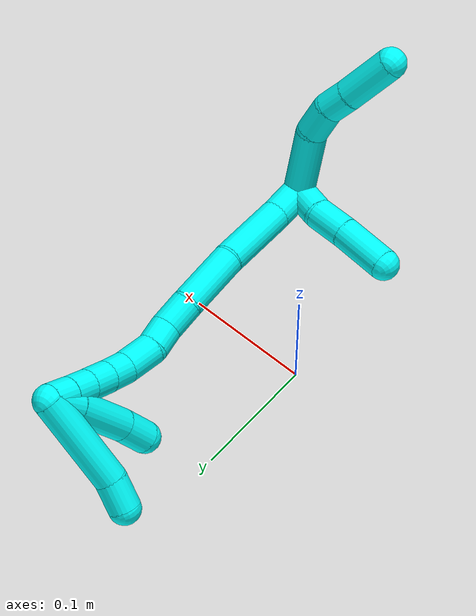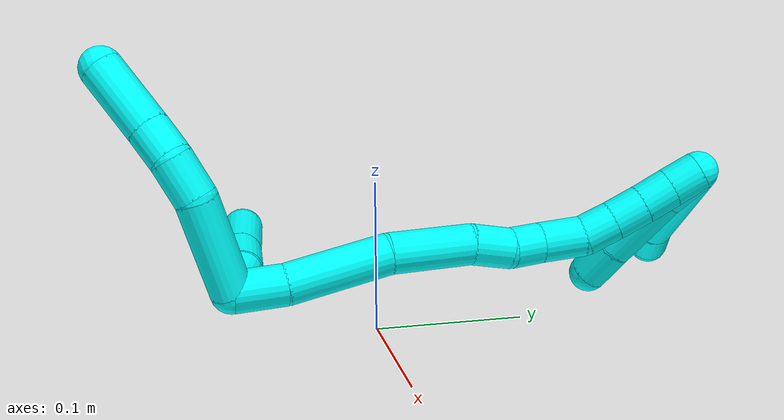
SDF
<sdf version="1.7">
 <world name="default">
  <model name="3">
   <static>0</static>
   <link name="3">
    <collision name="collision-cylinder-e_1_2_8">
     <pose>-0.023839 -0.017351 0.003004 1.39939 -0.934585 -0.803278</pose>
     <geometry><cylinder><radius>0.0125</radius><length>0.059275</length></cylinder></geometry>
     <surface>
      <friction><ode><mu>1.16</mu><mu2>1.16</mu2><slip1>0</slip1><slip2>0</slip2></ode></friction>
      <contact><ode><kp>1e+06</kp><kd>1</kd><max_vel>0</max_vel><min_depth>0.001</min_depth></ode></contact>
     </surface>
    </collision>
    <visual name="visual-cylinder-e_1_2_8">
     <pose>-0.023839 -0.017351 0.003004 1.39939 -0.934585 -0.803278</pose>
     <geometry><cylinder><radius>0.0125</radius><length>0.059275</length></cylinder></geometry>
     <material><ambient>0.003922 1 0.996078 1</ambient></material>
    </visual>
    <collision name="collision-cylinder-e_2_8_9">
     <pose>-0.055047 -0.044701 0.009262 1.25607 -0.611236 -0.450408</pose>
     <geometry><cylinder><radius>0.0125</radius><length>0.025681</length></cylinder></geometry>
     <surface>
      <friction><ode><mu>1.16</mu><mu2>1.16</mu2><slip1>0</slip1><slip2>0</slip2></ode></friction>
      <contact><ode><kp>1e+06</kp><kd>1</kd><max_vel>0</max_vel><min_depth>0.001</min_depth></ode></contact>
     </surface>
    </collision>
    <visual name="visual-cylinder-e_2_8_9">
     <pose>-0.055047 -0.044701 0.009262 1.25607 -0.611236 -0.450408</pose>
     <geometry><cylinder><radius>0.0125</radius><length>0.025681</length></cylinder></geometry>
     <material><ambient>0.003922 1 0.996078 1</ambient></material>
    </visual>
    <collision name="collision-cylinder-e_3_9_10">
     <pose>-0.065525 -0.064501 0.015369 1.2876 -0.295756 -0.222662</pose>
     <geometry><cylinder><radius>0.0125</radius><length>0.021342</length></cylinder></geometry>
     <surface>
      <friction><ode><mu>1.16</mu><mu2>1.16</mu2><slip1>0</slip1><slip2>0</slip2></ode></friction>
      <contact><ode><kp>1e+06</kp><kd>1</kd><max_vel>0</max_vel><min_depth>0.001</min_depth></ode></contact>
     </surface>
    </collision>
    <visual name="visual-cylinder-e_3_9_10">
     <pose>-0.065525 -0.064501 0.015369 1.2876 -0.295756 -0.222662</pose>
     <geometry><cylinder><radius>0.0125</radius><length>0.021342</length></cylinder></geometry>
     <material><ambient>0.003922 1 0.996078 1</ambient></material>
    </visual>
    <collision name="collision-cylinder-e_4_10_6">
     <pose>-0.075739 -0.093902 0.024769 1.24843 -0.331074 -0.239519</pose>
     <geometry><cylinder><radius>0.0125</radius><length>0.043703</length></cylinder></geometry>
     <surface>
      <friction><ode><mu>1.16</mu><mu2>1.16</mu2><slip1>0</slip1><slip2>0</slip2></ode></friction>
      <contact><ode><kp>1e+06</kp><kd>1</kd><max_vel>0</max_vel><min_depth>0.001</min_depth></ode></contact>
     </surface>
    </collision>
    <visual name="visual-cylinder-e_4_10_6">
     <pose>-0.075739 -0.093902 0.024769 1.24843 -0.331074 -0.239519</pose>
     <geometry><cylinder><radius>0.0125</radius><length>0.043703</length></cylinder></geometry>
     <material><ambient>0.003922 1 0.996078 1</ambient></material>
    </visual>
    <collision name="collision-cylinder-e_1_2_11">
     <pose>0.006822 -0.010471 -0.006718 2.1412 0.501557 0.876589</pose>
     <geometry><cylinder><radius>0.0125</radius><length>0.028376</length></cylinder></geometry>
     <surface>
      <friction><ode><mu>1.16</mu><mu2>1.16</mu2><slip1>0</slip1><slip2>0</slip2></ode></friction>
      <contact><ode><kp>1e+06</kp><kd>1</kd><max_vel>0</max_vel><min_depth>0.001</min_depth></ode></contact>
     </surface>
    </collision>
    <visual name="visual-cylinder-e_1_2_11">
     <pose>0.006822 -0.010471 -0.006718 2.1412 0.501557 0.876589</pose>
     <geometry><cylinder><radius>0.0125</radius><length>0.028376</length></cylinder></geometry>
     <material><ambient>0.003922 1 0.996078 1</ambient></material>
    </visual>
    <collision name="collision-cylinder-e_2_11_12">
     <pose>0.021518 -0.032511 -0.017021 1.87135 0.576513 0.765036</pose>
     <geometry><cylinder><radius>0.0125</radius><length>0.028893</length></cylinder></geometry>
     <surface>
      <friction><ode><mu>1.16</mu><mu2>1.16</mu2><slip1>0</slip1><slip2>0</slip2></ode></friction>
      <contact><ode><kp>1e+06</kp><kd>1</kd><max_vel>0</max_vel><min_depth>0.001</min_depth></ode></contact>
     </surface>
    </collision>
    <visual name="visual-cylinder-e_2_11_12">
     <pose>0.021518 -0.032511 -0.017021 1.87135 0.576513 0.765036</pose>
     <geometry><cylinder><radius>0.0125</radius><length>0.028893</length></cylinder></geometry>
     <material><ambient>0.003922 1 0.996078 1</ambient></material>
    </visual>
    <collision name="collision-cylinder-e_3_12_5">
     <pose>0.041219 -0.06072 -0.02691 1.9329 0.586562 0.824525</pose>
     <geometry><cylinder><radius>0.0125</radius><length>0.04273</length></cylinder></geometry>
     <surface>
      <friction><ode><mu>1.16</mu><mu2>1.16</mu2><slip1>0</slip1><slip2>0</slip2></ode></friction>
      <contact><ode><kp>1e+06</kp><kd>1</kd><max_vel>0</max_vel><min_depth>0.001</min_depth></ode></contact>
     </surface>
    </collision>
    <visual name="visual-cylinder-e_3_12_5">
     <pose>0.041219 -0.06072 -0.02691 1.9329 0.586562 0.824525</pose>
     <geometry><cylinder><radius>0.0125</radius><length>0.04273</length></cylinder></geometry>
     <material><ambient>0.003922 1 0.996078 1</ambient></material>
    </visual>
    <collision name="collision-cylinder-e_1_2_13">
     <pose>0.000851 0.002733 -0.015224 -2.96397 0.054979 -0.599003</pose>
     <geometry><cylinder><radius>0.0125</radius><length>0.030982</length></cylinder></geometry>
     <surface>
      <friction><ode><mu>1.16</mu><mu2>1.16</mu2><slip1>0</slip1><slip2>0</slip2></ode></friction>
      <contact><ode><kp>1e+06</kp><kd>1</kd><max_vel>0</max_vel><min_depth>0.001</min_depth></ode></contact>
     </surface>
    </collision>
    <visual name="visual-cylinder-e_1_2_13">
     <pose>0.000851 0.002733 -0.015224 -2.96397 0.054979 -0.599003</pose>
     <geometry><cylinder><radius>0.0125</radius><length>0.030982</length></cylinder></geometry>
     <material><ambient>0.003922 1 0.996078 1</ambient></material>
    </visual>
    <collision name="collision-cylinder-e_2_13_14">
     <pose>0.000133 0.007525 -0.061906 -3.07622 -0.049734 1.30053</pose>
     <geometry><cylinder><radius>0.0125</radius><length>0.063129</length></cylinder></geometry>
     <surface>
      <friction><ode><mu>1.16</mu><mu2>1.16</mu2><slip1>0</slip1><slip2>0</slip2></ode></friction>
      <contact><ode><kp>1e+06</kp><kd>1</kd><max_vel>0</max_vel><min_depth>0.001</min_depth></ode></contact>
     </surface>
    </collision>
    <visual name="visual-cylinder-e_2_13_14">
     <pose>0.000133 0.007525 -0.061906 -3.07622 -0.049734 1.30053</pose>
     <geometry><cylinder><radius>0.0125</radius><length>0.063129</length></cylinder></geometry>
     <material><ambient>0.003922 1 0.996078 1</ambient></material>
    </visual>
    <collision name="collision-cylinder-e_3_14_15">
     <pose>0.000838 0.014168 -0.11846 -2.96097 0.088913 -0.913222</pose>
     <geometry><cylinder><radius>0.0125</radius><length>0.051224</length></cylinder></geometry>
     <surface>
      <friction><ode><mu>1.16</mu><mu2>1.16</mu2><slip1>0</slip1><slip2>0</slip2></ode></friction>
      <contact><ode><kp>1e+06</kp><kd>1</kd><max_vel>0</max_vel><min_depth>0.001</min_depth></ode></contact>
     </surface>
    </collision>
    <visual name="visual-cylinder-e_3_14_15">
     <pose>0.000838 0.014168 -0.11846 -2.96097 0.088913 -0.913222</pose>
     <geometry><cylinder><radius>0.0125</radius><length>0.051224</length></cylinder></geometry>
     <material><ambient>0.003922 1 0.996078 1</ambient></material>
    </visual>
    <collision name="collision-cylinder-e_4_15_16">
     <pose>0.005728 0.022948 -0.154936 -2.78826 0.212394 -1.07656</pose>
     <geometry><cylinder><radius>0.0125</radius><length>0.024818</length></cylinder></geometry>
     <surface>
      <friction><ode><mu>1.16</mu><mu2>1.16</mu2><slip1>0</slip1><slip2>0</slip2></ode></friction>
      <contact><ode><kp>1e+06</kp><kd>1</kd><max_vel>0</max_vel><min_depth>0.001</min_depth></ode></contact>
     </surface>
    </collision>
    <visual name="visual-cylinder-e_4_15_16">
     <pose>0.005728 0.022948 -0.154936 -2.78826 0.212394 -1.07656</pose>
     <geometry><cylinder><radius>0.0125</radius><length>0.024818</length></cylinder></geometry>
     <material><ambient>0.003922 1 0.996078 1</ambient></material>
    </visual>
    <collision name="collision-cylinder-e_5_16_17">
     <pose>0.010036 0.027787 -0.176666 -3.07966 0.161724 -2.41142</pose>
     <geometry><cylinder><radius>0.0125</radius><length>0.021013</length></cylinder></geometry>
     <surface>
      <friction><ode><mu>1.16</mu><mu2>1.16</mu2><slip1>0</slip1><slip2>0</slip2></ode></friction>
      <contact><ode><kp>1e+06</kp><kd>1</kd><max_vel>0</max_vel><min_depth>0.001</min_depth></ode></contact>
     </surface>
    </collision>
    <visual name="visual-cylinder-e_5_16_17">
     <pose>0.010036 0.027787 -0.176666 -3.07966 0.161724 -2.41142</pose>
     <geometry><cylinder><radius>0.0125</radius><length>0.021013</length></cylinder></geometry>
     <material><ambient>0.003922 1 0.996078 1</ambient></material>
    </visual>
    <collision name="collision-cylinder-e_6_17_18">
     <pose>0.010545 0.031824 -0.200327 -2.89188 -0.085878 0.659641</pose>
     <geometry><cylinder><radius>0.0125</radius><length>0.027577</length></cylinder></geometry>
     <surface>
      <friction><ode><mu>1.16</mu><mu2>1.16</mu2><slip1>0</slip1><slip2>0</slip2></ode></friction>
      <contact><ode><kp>1e+06</kp><kd>1</kd><max_vel>0</max_vel><min_depth>0.001</min_depth></ode></contact>
     </surface>
    </collision>
    <visual name="visual-cylinder-e_6_17_18">
     <pose>0.010545 0.031824 -0.200327 -2.89188 -0.085878 0.659641</pose>
     <geometry><cylinder><radius>0.0125</radius><length>0.027577</length></cylinder></geometry>
     <material><ambient>0.003922 1 0.996078 1</ambient></material>
    </visual>
    <collision name="collision-cylinder-e_7_18_19">
     <pose>0.006219 0.035454 -0.223328 -3.11737 -0.31357 2.98863</pose>
     <geometry><cylinder><radius>0.0125</radius><length>0.020379</length></cylinder></geometry>
     <surface>
      <friction><ode><mu>1.16</mu><mu2>1.16</mu2><slip1>0</slip1><slip2>0</slip2></ode></friction>
      <contact><ode><kp>1e+06</kp><kd>1</kd><max_vel>0</max_vel><min_depth>0.001</min_depth></ode></contact>
     </surface>
    </collision>
    <visual name="visual-cylinder-e_7_18_19">
     <pose>0.006219 0.035454 -0.223328 -3.11737 -0.31357 2.98863</pose>
     <geometry><cylinder><radius>0.0125</radius><length>0.020379</length></cylinder></geometry>
     <material><ambient>0.003922 1 0.996078 1</ambient></material>
    </visual>
    <collision name="collision-cylinder-e_8_19_20">
     <pose>-0.000556 0.035671 -0.242755 3.13986 -0.357117 -3.13199</pose>
     <geometry><cylinder><radius>0.0125</radius><length>0.020784</length></cylinder></geometry>
     <surface>
      <friction><ode><mu>1.16</mu><mu2>1.16</mu2><slip1>0</slip1><slip2>0</slip2></ode></friction>
      <contact><ode><kp>1e+06</kp><kd>1</kd><max_vel>0</max_vel><min_depth>0.001</min_depth></ode></contact>
     </surface>
    </collision>
    <visual name="visual-cylinder-e_8_19_20">
     <pose>-0.000556 0.035671 -0.242755 3.13986 -0.357117 -3.13199</pose>
     <geometry><cylinder><radius>0.0125</radius><length>0.020784</length></cylinder></geometry>
     <material><ambient>0.003922 1 0.996078 1</ambient></material>
    </visual>
    <collision name="collision-cylinder-e_9_20_21">
     <pose>-0.007917 0.035374 -0.26179 3.11148 -0.381079 -2.98578</pose>
     <geometry><cylinder><radius>0.0125</radius><length>0.020044</length></cylinder></geometry>
     <surface>
      <friction><ode><mu>1.16</mu><mu2>1.16</mu2><slip1>0</slip1><slip2>0</slip2></ode></friction>
      <contact><ode><kp>1e+06</kp><kd>1</kd><max_vel>0</max_vel><min_depth>0.001</min_depth></ode></contact>
     </surface>
    </collision>
    <visual name="visual-cylinder-e_9_20_21">
     <pose>-0.007917 0.035374 -0.26179 3.11148 -0.381079 -2.98578</pose>
     <geometry><cylinder><radius>0.0125</radius><length>0.020044</length></cylinder></geometry>
     <material><ambient>0.003922 1 0.996078 1</ambient></material>
    </visual>
    <collision name="collision-cylinder-e_10_21_1">
     <pose>-0.015529 0.035086 -0.280331 3.14067 -0.397962 -3.13704</pose>
     <geometry><cylinder><radius>0.0125</radius><length>0.020052</length></cylinder></geometry>
     <surface>
      <friction><ode><mu>1.16</mu><mu2>1.16</mu2><slip1>0</slip1><slip2>0</slip2></ode></friction>
      <contact><ode><kp>1e+06</kp><kd>1</kd><max_vel>0</max_vel><min_depth>0.001</min_depth></ode></contact>
     </surface>
    </collision>
    <visual name="visual-cylinder-e_10_21_1">
     <pose>-0.015529 0.035086 -0.280331 3.14067 -0.397962 -3.13704</pose>
     <geometry><cylinder><radius>0.0125</radius><length>0.020052</length></cylinder></geometry>
     <material><ambient>0.003922 1 0.996078 1</ambient></material>
    </visual>
    <collision name="collision-cylinder-e_1_1_22">
     <pose>0.0177 0.028414 -0.288338 1.38752 1.39021 1.21281</pose>
     <geometry><cylinder><radius>0.0125</radius><length>0.075457</length></cylinder></geometry>
     <surface>
      <friction><ode><mu>1.16</mu><mu2>1.16</mu2><slip1>0</slip1><slip2>0</slip2></ode></friction>
      <contact><ode><kp>1e+06</kp><kd>1</kd><max_vel>0</max_vel><min_depth>0.001</min_depth></ode></contact>
     </surface>
    </collision>
    <visual name="visual-cylinder-e_1_1_22">
     <pose>0.0177 0.028414 -0.288338 1.38752 1.39021 1.21281</pose>
     <geometry><cylinder><radius>0.0125</radius><length>0.075457</length></cylinder></geometry>
     <material><ambient>0.003922 1 0.996078 1</ambient></material>
    </visual>
    <collision name="collision-cylinder-e_2_22_4">
     <pose>0.066836 0.020432 -0.289191 2.57794 1.36812 2.45921</pose>
     <geometry><cylinder><radius>0.0125</radius><length>0.024543</length></cylinder></geometry>
     <surface>
      <friction><ode><mu>1.16</mu><mu2>1.16</mu2><slip1>0</slip1><slip2>0</slip2></ode></friction>
      <contact><ode><kp>1e+06</kp><kd>1</kd><max_vel>0</max_vel><min_depth>0.001</min_depth></ode></contact>
     </surface>
    </collision>
    <visual name="visual-cylinder-e_2_22_4">
     <pose>0.066836 0.020432 -0.289191 2.57794 1.36812 2.45921</pose>
     <geometry><cylinder><radius>0.0125</radius><length>0.024543</length></cylinder></geometry>
     <material><ambient>0.003922 1 0.996078 1</ambient></material>
    </visual>
    <collision name="collision-cylinder-e_1_1_23">
     <pose>-0.009884 0.034467 -0.280879 0.070098 0.83007 0.030898</pose>
     <geometry><cylinder><radius>0.0125</radius><length>0.025831</length></cylinder></geometry>
     <surface>
      <friction><ode><mu>1.16</mu><mu2>1.16</mu2><slip1>0</slip1><slip2>0</slip2></ode></friction>
      <contact><ode><kp>1e+06</kp><kd>1</kd><max_vel>0</max_vel><min_depth>0.001</min_depth></ode></contact>
     </surface>
    </collision>
    <visual name="visual-cylinder-e_1_1_23">
     <pose>-0.009884 0.034467 -0.280879 0.070098 0.83007 0.030898</pose>
     <geometry><cylinder><radius>0.0125</radius><length>0.025831</length></cylinder></geometry>
     <material><ambient>0.003922 1 0.996078 1</ambient></material>
    </visual>
    <collision name="collision-cylinder-e_2_23_24">
     <pose>0.019306 0.033933 -0.258001 -0.005395 0.945782 -0.00276</pose>
     <geometry><cylinder><radius>0.0125</radius><length>0.048482</length></cylinder></geometry>
     <surface>
      <friction><ode><mu>1.16</mu><mu2>1.16</mu2><slip1>0</slip1><slip2>0</slip2></ode></friction>
      <contact><ode><kp>1e+06</kp><kd>1</kd><max_vel>0</max_vel><min_depth>0.001</min_depth></ode></contact>
     </surface>
    </collision>
    <visual name="visual-cylinder-e_2_23_24">
     <pose>0.019306 0.033933 -0.258001 -0.005395 0.945782 -0.00276</pose>
     <geometry><cylinder><radius>0.0125</radius><length>0.048482</length></cylinder></geometry>
     <material><ambient>0.003922 1 0.996078 1</ambient></material>
    </visual>
    <collision name="collision-cylinder-e_3_24_3">
     <pose>0.05003 0.033668 -0.237307 0.052439 1.03835 0.029972</pose>
     <geometry><cylinder><radius>0.0125</radius><length>0.025687</length></cylinder></geometry>
     <surface>
      <friction><ode><mu>1.16</mu><mu2>1.16</mu2><slip1>0</slip1><slip2>0</slip2></ode></friction>
      <contact><ode><kp>1e+06</kp><kd>1</kd><max_vel>0</max_vel><min_depth>0.001</min_depth></ode></contact>
     </surface>
    </collision>
    <visual name="visual-cylinder-e_3_24_3">
     <pose>0.05003 0.033668 -0.237307 0.052439 1.03835 0.029972</pose>
     <geometry><cylinder><radius>0.0125</radius><length>0.025687</length></cylinder></geometry>
     <material><ambient>0.003922 1 0.996078 1</ambient></material>
    </visual>
    <collision name="collision-sphere-3">
     <pose>0.061096 0.033326 -0.230796 0 -0 0</pose>
     <geometry><sphere><radius>0.0125</radius></sphere></geometry>
     <surface>
      <friction><ode><mu>1.16</mu><mu2>1.16</mu2><slip1>0</slip1><slip2>0</slip2></ode></friction>
      <contact><ode><kp>1e+06</kp><kd>1</kd><max_vel>0</max_vel><min_depth>0.001</min_depth></ode></contact>
     </surface>
    </collision>
    <visual name="visual-sphere-3">
     <pose>0.061096 0.033326 -0.230796 0 -0 0</pose>
     <geometry><sphere><radius>0.0125</radius></sphere></geometry>
     <material><ambient>0.003922 1 0.996078 1</ambient></material>
    </visual>
    <collision name="collision-sphere-24">
     <pose>0.038965 0.03401 -0.243818 0 -0 0</pose>
     <geometry><sphere><radius>0.0125</radius></sphere></geometry>
     <surface>
      <friction><ode><mu>1.16</mu><mu2>1.16</mu2><slip1>0</slip1><slip2>0</slip2></ode></friction>
      <contact><ode><kp>1e+06</kp><kd>1</kd><max_vel>0</max_vel><min_depth>0.001</min_depth></ode></contact>
     </surface>
    </collision>
    <visual name="visual-sphere-24">
     <pose>0.038965 0.03401 -0.243818 0 -0 0</pose>
     <geometry><sphere><radius>0.0125</radius></sphere></geometry>
     <material><ambient>0.003922 1 0.996078 1</ambient></material>
    </visual>
    <collision name="collision-sphere-23">
     <pose>-0.000352 0.033856 -0.272185 0 -0 0</pose>
     <geometry><sphere><radius>0.0125</radius></sphere></geometry>
     <surface>
      <friction><ode><mu>1.16</mu><mu2>1.16</mu2><slip1>0</slip1><slip2>0</slip2></ode></friction>
      <contact><ode><kp>1e+06</kp><kd>1</kd><max_vel>0</max_vel><min_depth>0.001</min_depth></ode></contact>
     </surface>
    </collision>
    <visual name="visual-sphere-23">
     <pose>-0.000352 0.033856 -0.272185 0 -0 0</pose>
     <geometry><sphere><radius>0.0125</radius></sphere></geometry>
     <material><ambient>0.003922 1 0.996078 1</ambient></material>
    </visual>
    <collision name="collision-sphere-4">
     <pose>0.078856 0.019112 -0.291279 0 -0 0</pose>
     <geometry><sphere><radius>0.0125</radius></sphere></geometry>
     <surface>
      <friction><ode><mu>1.16</mu><mu2>1.16</mu2><slip1>0</slip1><slip2>0</slip2></ode></friction>
      <contact><ode><kp>1e+06</kp><kd>1</kd><max_vel>0</max_vel><min_depth>0.001</min_depth></ode></contact>
     </surface>
    </collision>
    <visual name="visual-sphere-4">
     <pose>0.078856 0.019112 -0.291279 0 -0 0</pose>
     <geometry><sphere><radius>0.0125</radius></sphere></geometry>
     <material><ambient>0.003922 1 0.996078 1</ambient></material>
    </visual>
    <collision name="collision-sphere-22">
     <pose>0.054815 0.021751 -0.287103 0 -0 0</pose>
     <geometry><sphere><radius>0.0125</radius></sphere></geometry>
     <surface>
      <friction><ode><mu>1.16</mu><mu2>1.16</mu2><slip1>0</slip1><slip2>0</slip2></ode></friction>
      <contact><ode><kp>1e+06</kp><kd>1</kd><max_vel>0</max_vel><min_depth>0.001</min_depth></ode></contact>
     </surface>
    </collision>
    <visual name="visual-sphere-22">
     <pose>0.054815 0.021751 -0.287103 0 -0 0</pose>
     <geometry><sphere><radius>0.0125</radius></sphere></geometry>
     <material><ambient>0.003922 1 0.996078 1</ambient></material>
    </visual>
    <collision name="collision-sphere-1">
     <pose>-0.019415 0.035077 -0.289573 0 -0 0</pose>
     <geometry><sphere><radius>0.0125</radius></sphere></geometry>
     <surface>
      <friction><ode><mu>1.16</mu><mu2>1.16</mu2><slip1>0</slip1><slip2>0</slip2></ode></friction>
      <contact><ode><kp>1e+06</kp><kd>1</kd><max_vel>0</max_vel><min_depth>0.001</min_depth></ode></contact>
     </surface>
    </collision>
    <visual name="visual-sphere-1">
     <pose>-0.019415 0.035077 -0.289573 0 -0 0</pose>
     <geometry><sphere><radius>0.0125</radius></sphere></geometry>
     <material><ambient>0.003922 1 0.996078 1</ambient></material>
    </visual>
    <collision name="collision-sphere-21">
     <pose>-0.011644 0.035094 -0.271089 0 -0 0</pose>
     <geometry><sphere><radius>0.0125</radius></sphere></geometry>
     <surface>
      <friction><ode><mu>1.16</mu><mu2>1.16</mu2><slip1>0</slip1><slip2>0</slip2></ode></friction>
      <contact><ode><kp>1e+06</kp><kd>1</kd><max_vel>0</max_vel><min_depth>0.001</min_depth></ode></contact>
     </surface>
    </collision>
    <visual name="visual-sphere-21">
     <pose>-0.011644 0.035094 -0.271089 0 -0 0</pose>
     <geometry><sphere><radius>0.0125</radius></sphere></geometry>
     <material><ambient>0.003922 1 0.996078 1</ambient></material>
    </visual>
    <collision name="collision-sphere-11">
     <pose>0.013643 -0.020942 -0.013435 0 -0 0</pose>
     <geometry><sphere><radius>0.0125</radius></sphere></geometry>
     <surface>
      <friction><ode><mu>1.16</mu><mu2>1.16</mu2><slip1>0</slip1><slip2>0</slip2></ode></friction>
      <contact><ode><kp>1e+06</kp><kd>1</kd><max_vel>0</max_vel><min_depth>0.001</min_depth></ode></contact>
     </surface>
    </collision>
    <visual name="visual-sphere-11">
     <pose>0.013643 -0.020942 -0.013435 0 -0 0</pose>
     <geometry><sphere><radius>0.0125</radius></sphere></geometry>
     <material><ambient>0.003922 1 0.996078 1</ambient></material>
    </visual>
    <collision name="collision-sphere-6">
     <pose>-0.082842 -0.113503 0.031316 0 -0 0</pose>
     <geometry><sphere><radius>0.0125</radius></sphere></geometry>
     <surface>
      <friction><ode><mu>1.16</mu><mu2>1.16</mu2><slip1>0</slip1><slip2>0</slip2></ode></friction>
      <contact><ode><kp>1e+06</kp><kd>1</kd><max_vel>0</max_vel><min_depth>0.001</min_depth></ode></contact>
     </surface>
    </collision>
    <visual name="visual-sphere-6">
     <pose>-0.082842 -0.113503 0.031316 0 -0 0</pose>
     <geometry><sphere><radius>0.0125</radius></sphere></geometry>
     <material><ambient>0.003922 1 0.996078 1</ambient></material>
    </visual>
    <collision name="collision-sphere-10">
     <pose>-0.068636 -0.074302 0.018222 0 -0 0</pose>
     <geometry><sphere><radius>0.0125</radius></sphere></geometry>
     <surface>
      <friction><ode><mu>1.16</mu><mu2>1.16</mu2><slip1>0</slip1><slip2>0</slip2></ode></friction>
      <contact><ode><kp>1e+06</kp><kd>1</kd><max_vel>0</max_vel><min_depth>0.001</min_depth></ode></contact>
     </surface>
    </collision>
    <visual name="visual-sphere-10">
     <pose>-0.068636 -0.074302 0.018222 0 -0 0</pose>
     <geometry><sphere><radius>0.0125</radius></sphere></geometry>
     <material><ambient>0.003922 1 0.996078 1</ambient></material>
    </visual>
    <collision name="collision-sphere-9">
     <pose>-0.062415 -0.0547 0.012517 0 -0 0</pose>
     <geometry><sphere><radius>0.0125</radius></sphere></geometry>
     <surface>
      <friction><ode><mu>1.16</mu><mu2>1.16</mu2><slip1>0</slip1><slip2>0</slip2></ode></friction>
      <contact><ode><kp>1e+06</kp><kd>1</kd><max_vel>0</max_vel><min_depth>0.001</min_depth></ode></contact>
     </surface>
    </collision>
    <visual name="visual-sphere-9">
     <pose>-0.062415 -0.0547 0.012517 0 -0 0</pose>
     <geometry><sphere><radius>0.0125</radius></sphere></geometry>
     <material><ambient>0.003922 1 0.996078 1</ambient></material>
    </visual>
    <collision name="collision-sphere-2">
     <geometry><sphere><radius>0.0125</radius></sphere></geometry>
     <surface>
      <friction><ode><mu>1.16</mu><mu2>1.16</mu2><slip1>0</slip1><slip2>0</slip2></ode></friction>
      <contact><ode><kp>1e+06</kp><kd>1</kd><max_vel>0</max_vel><min_depth>0.001</min_depth></ode></contact>
     </surface>
    </collision>
    <visual name="visual-sphere-2">
     <geometry><sphere><radius>0.0125</radius></sphere></geometry>
     <material><ambient>0.003922 1 0.996078 1</ambient></material>
    </visual>
    <collision name="collision-sphere-19">
     <pose>0.003076 0.035688 -0.233018 0 -0 0</pose>
     <geometry><sphere><radius>0.0125</radius></sphere></geometry>
     <surface>
      <friction><ode><mu>1.16</mu><mu2>1.16</mu2><slip1>0</slip1><slip2>0</slip2></ode></friction>
      <contact><ode><kp>1e+06</kp><kd>1</kd><max_vel>0</max_vel><min_depth>0.001</min_depth></ode></contact>
     </surface>
    </collision>
    <visual name="visual-sphere-19">
     <pose>0.003076 0.035688 -0.233018 0 -0 0</pose>
     <geometry><sphere><radius>0.0125</radius></sphere></geometry>
     <material><ambient>0.003922 1 0.996078 1</ambient></material>
    </visual>
    <collision name="collision-sphere-8">
     <pose>-0.047678 -0.034702 0.006007 0 -0 0</pose>
     <geometry><sphere><radius>0.0125</radius></sphere></geometry>
     <surface>
      <friction><ode><mu>1.16</mu><mu2>1.16</mu2><slip1>0</slip1><slip2>0</slip2></ode></friction>
      <contact><ode><kp>1e+06</kp><kd>1</kd><max_vel>0</max_vel><min_depth>0.001</min_depth></ode></contact>
     </surface>
    </collision>
    <visual name="visual-sphere-8">
     <pose>-0.047678 -0.034702 0.006007 0 -0 0</pose>
     <geometry><sphere><radius>0.0125</radius></sphere></geometry>
     <material><ambient>0.003922 1 0.996078 1</ambient></material>
    </visual>
    <collision name="collision-sphere-12">
     <pose>0.029393 -0.044079 -0.020607 0 -0 0</pose>
     <geometry><sphere><radius>0.0125</radius></sphere></geometry>
     <surface>
      <friction><ode><mu>1.16</mu><mu2>1.16</mu2><slip1>0</slip1><slip2>0</slip2></ode></friction>
      <contact><ode><kp>1e+06</kp><kd>1</kd><max_vel>0</max_vel><min_depth>0.001</min_depth></ode></contact>
     </surface>
    </collision>
    <visual name="visual-sphere-12">
     <pose>0.029393 -0.044079 -0.020607 0 -0 0</pose>
     <geometry><sphere><radius>0.0125</radius></sphere></geometry>
     <material><ambient>0.003922 1 0.996078 1</ambient></material>
    </visual>
    <collision name="collision-sphere-5">
     <pose>0.053044 -0.07736 -0.033213 0 -0 0</pose>
     <geometry><sphere><radius>0.0125</radius></sphere></geometry>
     <surface>
      <friction><ode><mu>1.16</mu><mu2>1.16</mu2><slip1>0</slip1><slip2>0</slip2></ode></friction>
      <contact><ode><kp>1e+06</kp><kd>1</kd><max_vel>0</max_vel><min_depth>0.001</min_depth></ode></contact>
     </surface>
    </collision>
    <visual name="visual-sphere-5">
     <pose>0.053044 -0.07736 -0.033213 0 -0 0</pose>
     <geometry><sphere><radius>0.0125</radius></sphere></geometry>
     <material><ambient>0.003922 1 0.996078 1</ambient></material>
    </visual>
    <collision name="collision-sphere-13">
     <pose>0.001702 0.005466 -0.030448 0 -0 0</pose>
     <geometry><sphere><radius>0.0125</radius></sphere></geometry>
     <surface>
      <friction><ode><mu>1.16</mu><mu2>1.16</mu2><slip1>0</slip1><slip2>0</slip2></ode></friction>
      <contact><ode><kp>1e+06</kp><kd>1</kd><max_vel>0</max_vel><min_depth>0.001</min_depth></ode></contact>
     </surface>
    </collision>
    <visual name="visual-sphere-13">
     <pose>0.001702 0.005466 -0.030448 0 -0 0</pose>
     <geometry><sphere><radius>0.0125</radius></sphere></geometry>
     <material><ambient>0.003922 1 0.996078 1</ambient></material>
    </visual>
    <collision name="collision-sphere-14">
     <pose>-0.001436 0.009585 -0.093364 0 -0 0</pose>
     <geometry><sphere><radius>0.0125</radius></sphere></geometry>
     <surface>
      <friction><ode><mu>1.16</mu><mu2>1.16</mu2><slip1>0</slip1><slip2>0</slip2></ode></friction>
      <contact><ode><kp>1e+06</kp><kd>1</kd><max_vel>0</max_vel><min_depth>0.001</min_depth></ode></contact>
     </surface>
    </collision>
    <visual name="visual-sphere-14">
     <pose>-0.001436 0.009585 -0.093364 0 -0 0</pose>
     <geometry><sphere><radius>0.0125</radius></sphere></geometry>
     <material><ambient>0.003922 1 0.996078 1</ambient></material>
    </visual>
    <collision name="collision-sphere-15">
     <pose>0.003113 0.018751 -0.143555 0 -0 0</pose>
     <geometry><sphere><radius>0.0125</radius></sphere></geometry>
     <surface>
      <friction><ode><mu>1.16</mu><mu2>1.16</mu2><slip1>0</slip1><slip2>0</slip2></ode></friction>
      <contact><ode><kp>1e+06</kp><kd>1</kd><max_vel>0</max_vel><min_depth>0.001</min_depth></ode></contact>
     </surface>
    </collision>
    <visual name="visual-sphere-15">
     <pose>0.003113 0.018751 -0.143555 0 -0 0</pose>
     <geometry><sphere><radius>0.0125</radius></sphere></geometry>
     <material><ambient>0.003922 1 0.996078 1</ambient></material>
    </visual>
    <collision name="collision-sphere-16">
     <pose>0.008344 0.027145 -0.166317 0 -0 0</pose>
     <geometry><sphere><radius>0.0125</radius></sphere></geometry>
     <surface>
      <friction><ode><mu>1.16</mu><mu2>1.16</mu2><slip1>0</slip1><slip2>0</slip2></ode></friction>
      <contact><ode><kp>1e+06</kp><kd>1</kd><max_vel>0</max_vel><min_depth>0.001</min_depth></ode></contact>
     </surface>
    </collision>
    <visual name="visual-sphere-16">
     <pose>0.008344 0.027145 -0.166317 0 -0 0</pose>
     <geometry><sphere><radius>0.0125</radius></sphere></geometry>
     <material><ambient>0.003922 1 0.996078 1</ambient></material>
    </visual>
    <collision name="collision-sphere-17">
     <pose>0.011728 0.028429 -0.187016 0 -0 0</pose>
     <geometry><sphere><radius>0.0125</radius></sphere></geometry>
     <surface>
      <friction><ode><mu>1.16</mu><mu2>1.16</mu2><slip1>0</slip1><slip2>0</slip2></ode></friction>
      <contact><ode><kp>1e+06</kp><kd>1</kd><max_vel>0</max_vel><min_depth>0.001</min_depth></ode></contact>
     </surface>
    </collision>
    <visual name="visual-sphere-17">
     <pose>0.011728 0.028429 -0.187016 0 -0 0</pose>
     <geometry><sphere><radius>0.0125</radius></sphere></geometry>
     <material><ambient>0.003922 1 0.996078 1</ambient></material>
    </visual>
    <collision name="collision-sphere-18">
     <pose>0.009362 0.035219 -0.213639 0 -0 0</pose>
     <geometry><sphere><radius>0.0125</radius></sphere></geometry>
     <surface>
      <friction><ode><mu>1.16</mu><mu2>1.16</mu2><slip1>0</slip1><slip2>0</slip2></ode></friction>
      <contact><ode><kp>1e+06</kp><kd>1</kd><max_vel>0</max_vel><min_depth>0.001</min_depth></ode></contact>
     </surface>
    </collision>
    <visual name="visual-sphere-18">
     <pose>0.009362 0.035219 -0.213639 0 -0 0</pose>
     <geometry><sphere><radius>0.0125</radius></sphere></geometry>
     <material><ambient>0.003922 1 0.996078 1</ambient></material>
    </visual>
    <collision name="collision-sphere-20">
     <pose>-0.004189 0.035655 -0.252491 0 -0 0</pose>
     <geometry><sphere><radius>0.0125</radius></sphere></geometry>
     <surface>
      <friction><ode><mu>1.16</mu><mu2>1.16</mu2><slip1>0</slip1><slip2>0</slip2></ode></friction>
      <contact><ode><kp>1e+06</kp><kd>1</kd><max_vel>0</max_vel><min_depth>0.001</min_depth></ode></contact>
     </surface>
    </collision>
    <visual name="visual-sphere-20">
     <pose>-0.004189 0.035655 -0.252491 0 -0 0</pose>
     <geometry><sphere><radius>0.0125</radius></sphere></geometry>
     <material><ambient>0.003922 1 0.996078 1</ambient></material>
    </visual>
    <inertial>
     <pose>0.000467 0.001001 -0.13162 0 -0 0</pose>
     <mass>0.75</mass>
     <inertia><ixx>7.6e-05</ixx><ixy>0</ixy><ixz>0</ixz><iyy>6.3e-05</iyy><iyz>0</iyz><izz>-2.3e-05</izz></inertia>
    </inertial>
   </link>
   <pose>0.083675 -0.100962 0.061524 -1.90336 0.903688 3.03835</pose>
  </model>
 </world>
</sdf>
